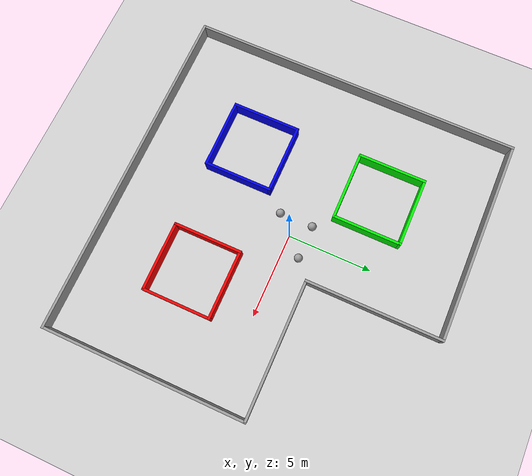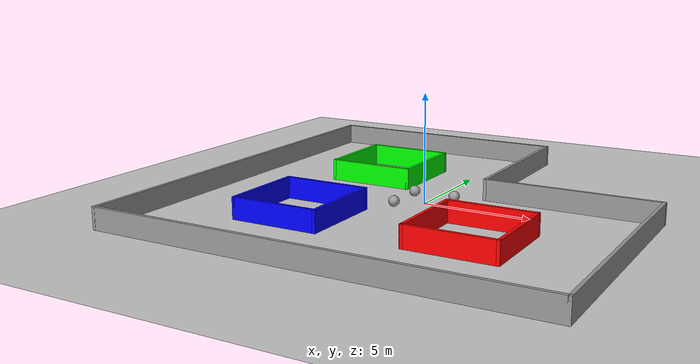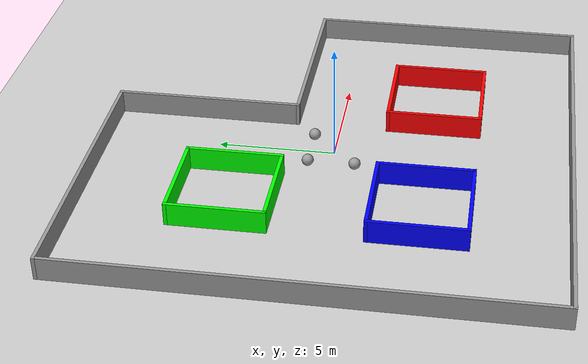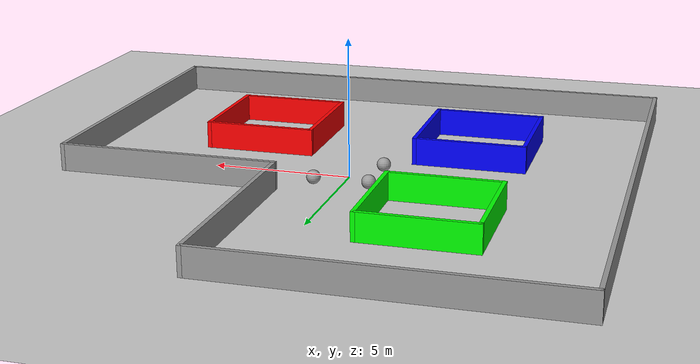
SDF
<sdf version="1.6">
 <world name="default">
  <light name="sun" type="directional">
   <pose>0 0 10 0 -0 0</pose>
   <diffuse>0.8 0.8 0.8 1</diffuse>
   <specular>0.1 0.1 0.1 1</specular>
   <attenuation>
    <range>1000</range>
    <constant>0.9</constant>
    <linear>0.01</linear>
    <quadratic>0.001</quadratic>
   </attenuation>
   <direction>-0.5 0.5 -1</direction>
  </light>
  <model name="ground_plane">
   <static>1</static>
   <link name="link">
    <collision name="collision">
     <geometry><plane><normal>0 0 1</normal><size>100 100</size></plane></geometry>
     <surface><friction><ode><mu>100</mu><mu2>50</mu2></ode></friction></surface>
    </collision>
    <visual name="visual">
     <cast_shadows>0</cast_shadows>
     <geometry><plane><normal>0 0 1</normal><size>100 100</size></plane></geometry>
     <material>
      <script><uri>file://media/materials/scripts/gazebo.material</uri><name>Gazebo/Grey</name></script>
     </material>
    </visual>
   </link>
  </model>
  <gravity>0 0 -9.8</gravity>
  <magnetic_field>6e-06 2.3e-05 -4.2e-05</magnetic_field>
  <atmosphere type="adiabatic"/>
  <physics name="default_physics" default="0" type="ode">
   <max_step_size>0.001</max_step_size>
   <real_time_factor>1</real_time_factor>
   <real_time_update_rate>1000</real_time_update_rate>
  </physics>
  <scene><ambient>0.4 0.4 0.4 1</ambient><background>0.7 0.7 0.7 1</background><shadows>1</shadows></scene>
  <spherical_coordinates>
   <surface_model>EARTH_WGS84</surface_model>
   <latitude_deg>0</latitude_deg>
   <longitude_deg>0</longitude_deg>
   <elevation>0</elevation>
   <heading_deg>0</heading_deg>
  </spherical_coordinates>
  <model name="sphere1">
   <pose>1 1 0.25 0 -0 0</pose>
   <link name="link">
    <inertial>
     <mass>1</mass>
     <inertia><ixx>0.1</ixx><ixy>0</ixy><ixz>0</ixz><iyy>0.1</iyy><iyz>0</iyz><izz>0.1</izz></inertia>
    </inertial>
    <collision name="collision"><geometry><sphere><radius>0.25</radius></sphere></geometry></collision>
    <visual name="visual">
     <geometry><sphere><radius>0.25</radius></sphere></geometry>
     <material>
      <script><name>Gazebo/Grey</name><uri>file://media/materials/scripts/gazebo.material</uri></script>
     </material>
    </visual>
   </link>
  </model>
  <model name="sphere2">
   <pose>-1 1 0.25 0 -0 0</pose>
   <link name="link">
    <inertial>
     <mass>1</mass>
     <inertia><ixx>0.1</ixx><ixy>0</ixy><ixz>0</ixz><iyy>0.1</iyy><iyz>0</iyz><izz>0.1</izz></inertia>
    </inertial>
    <collision name="collision"><geometry><sphere><radius>0.25</radius></sphere></geometry></collision>
    <visual name="visual">
     <geometry><sphere><radius>0.25</radius></sphere></geometry>
     <material>
      <script><name>Gazebo/Grey</name><uri>file://media/materials/scripts/gazebo.material</uri></script>
     </material>
    </visual>
   </link>
  </model>
  <model name="sphere3">
   <pose>-1 -1 0.25 0 -0 0</pose>
   <link name="link">
    <inertial>
     <mass>1</mass>
     <inertia><ixx>0.1</ixx><ixy>0</ixy><ixz>0</ixz><iyy>0.1</iyy><iyz>0</iyz><izz>0.1</izz></inertia>
    </inertial>
    <collision name="collision"><geometry><sphere><radius>0.25</radius></sphere></geometry></collision>
    <visual name="visual">
     <geometry><sphere><radius>0.25</radius></sphere></geometry>
     <material>
      <script><name>Gazebo/Grey</name><uri>file://media/materials/scripts/gazebo.material</uri></script>
     </material>
    </visual>
   </link>
  </model>
  <model name="Dynamic_stage">
   <pose>0.110177 -0.07071 0 0 -0 0</pose>
   <link name="Wall_10">
    <collision name="Wall_10_Collision">
     <geometry><box><size>12.15 0.15 1</size></box></geometry>
     <pose>0 0 0.5 0 -0 0</pose>
    </collision>
    <visual name="Wall_10_Visual">
     <pose>0 0 0.5 0 -0 0</pose>
     <geometry><box><size>12.15 0.15 1</size></box></geometry>
     <material>
      <script><uri>file://media/materials/scripts/gazebo.material</uri><name>Gazebo/Grey</name></script>
      <ambient>0 0 0 1</ambient>
     </material>
    </visual>
    <pose>-4 10 0 0 -0 3.14159</pose>
   </link>
   <link name="Wall_12">
    <collision name="Wall_12_Collision">
     <geometry><box><size>4.15 0.15 1</size></box></geometry>
     <pose>0 0 0.5 0 -0 0</pose>
    </collision>
    <visual name="Wall_12_Visual">
     <pose>0 0 0.5 0 -0 0</pose>
     <geometry><box><size>4.15 0.15 1</size></box></geometry>
     <material>
      <script><uri>file://media/materials/scripts/gazebo.material</uri><name>Gazebo/Grey</name></script>
      <ambient>0 1 0 1</ambient>
     </material>
    </visual>
    <pose>-6 4 0 0 0 -1.5708</pose>
   </link>
   <link name="Wall_13">
    <collision name="Wall_13_Collision">
     <geometry><box><size>4.15 0.15 1</size></box></geometry>
     <pose>0 0 0.5 0 -0 0</pose>
    </collision>
    <visual name="Wall_13_Visual">
     <pose>0 0 0.5 0 -0 0</pose>
     <geometry><box><size>4.15 0.15 1</size></box></geometry>
     <material>
      <script><uri>file://media/materials/scripts/gazebo.material</uri><name>Gazebo/Grey</name></script>
      <ambient>0 1 0 1</ambient>
     </material>
    </visual>
    <pose>-4 2 0 0 -0 0</pose>
   </link>
   <link name="Wall_14">
    <collision name="Wall_14_Collision">
     <geometry><box><size>4.15 0.15 1</size></box></geometry>
     <pose>0 0 0.5 0 -0 0</pose>
    </collision>
    <visual name="Wall_14_Visual">
     <pose>0 0 0.5 0 -0 0</pose>
     <geometry><box><size>4.15 0.15 1</size></box></geometry>
     <material>
      <script><uri>file://media/materials/scripts/gazebo.material</uri><name>Gazebo/Grey</name></script>
      <ambient>0 1 0 1</ambient>
     </material>
    </visual>
    <pose>-2 4 0 0 -0 1.5708</pose>
   </link>
   <link name="Wall_15">
    <collision name="Wall_15_Collision">
     <geometry><box><size>4.15 0.15 1</size></box></geometry>
     <pose>0 0 0.5 0 -0 0</pose>
    </collision>
    <visual name="Wall_15_Visual">
     <pose>0 0 0.5 0 -0 0</pose>
     <geometry><box><size>4.15 0.15 1</size></box></geometry>
     <material>
      <script><uri>file://media/materials/scripts/gazebo.material</uri><name>Gazebo/Grey</name></script>
      <ambient>0 1 0 1</ambient>
     </material>
    </visual>
    <pose>-4 6 0 0 -0 3.14159</pose>
   </link>
   <link name="Wall_17">
    <collision name="Wall_17_Collision">
     <geometry><box><size>4.15 0.15 1</size></box></geometry>
     <pose>0 0 0.5 0 -0 0</pose>
    </collision>
    <visual name="Wall_17_Visual">
     <pose>0 0 0.5 0 -0 0</pose>
     <geometry><box><size>4.15 0.15 1</size></box></geometry>
     <material>
      <script><uri>file://media/materials/scripts/gazebo.material</uri><name>Gazebo/Grey</name></script>
      <ambient>0 0 1 1</ambient>
     </material>
    </visual>
    <pose>-6 -4 0 0 0 -1.5708</pose>
   </link>
   <link name="Wall_18">
    <collision name="Wall_18_Collision">
     <geometry><box><size>4.173 0.15 1</size></box></geometry>
     <pose>0 0 0.5 0 -0 0</pose>
    </collision>
    <visual name="Wall_18_Visual">
     <pose>0 0 0.5 0 -0 0</pose>
     <geometry><box><size>4.173 0.15 1</size></box></geometry>
     <material>
      <script><uri>file://media/materials/scripts/gazebo.material</uri><name>Gazebo/Grey</name></script>
      <ambient>0 0 1 1</ambient>
     </material>
    </visual>
    <pose>-3.9885 -6 0 0 -0 0</pose>
   </link>
   <link name="Wall_19">
    <collision name="Wall_19_Collision">
     <geometry><box><size>4.15 0.15 1</size></box></geometry>
     <pose>0 0 0.5 0 -0 0</pose>
    </collision>
    <visual name="Wall_19_Visual">
     <pose>0 0 0.5 0 -0 0</pose>
     <geometry><box><size>4.15 0.15 1</size></box></geometry>
     <material>
      <script><uri>file://media/materials/scripts/gazebo.material</uri><name>Gazebo/Grey</name></script>
      <ambient>0 0 1 1</ambient>
     </material>
    </visual>
    <pose>-1.977 -4 0 0 -0 1.5708</pose>
   </link>
   <link name="Wall_20">
    <collision name="Wall_20_Collision">
     <geometry><box><size>4.173 0.15 1</size></box></geometry>
     <pose>0 0 0.5 0 -0 0</pose>
    </collision>
    <visual name="Wall_20_Visual">
     <pose>0 0 0.5 0 -0 0</pose>
     <geometry><box><size>4.173 0.15 1</size></box></geometry>
     <material>
      <script><uri>file://media/materials/scripts/gazebo.material</uri><name>Gazebo/Grey</name></script>
      <ambient>0 0 1 1</ambient>
     </material>
    </visual>
    <pose>-3.9885 -2 0 0 -0 3.14159</pose>
   </link>
   <link name="Wall_22">
    <collision name="Wall_22_Collision">
     <geometry><box><size>4.15 0.15 1</size></box></geometry>
     <pose>0 0 0.5 0 -0 0</pose>
    </collision>
    <visual name="Wall_22_Visual">
     <pose>0 0 0.5 0 -0 0</pose>
     <geometry><box><size>4.15 0.15 1</size></box></geometry>
     <material>
      <script><uri>file://media/materials/scripts/gazebo.material</uri><name>Gazebo/Grey</name></script>
      <ambient>1 0 0 1</ambient>
     </material>
    </visual>
    <pose>2 -4 0 0 0 -1.5708</pose>
   </link>
   <link name="Wall_23">
    <collision name="Wall_23_Collision">
     <geometry><box><size>4.15 0.15 1</size></box></geometry>
     <pose>0 0 0.5 0 -0 0</pose>
    </collision>
    <visual name="Wall_23_Visual">
     <pose>0 0 0.5 0 -0 0</pose>
     <geometry><box><size>4.15 0.15 1</size></box></geometry>
     <material>
      <script><uri>file://media/materials/scripts/gazebo.material</uri><name>Gazebo/Grey</name></script>
      <ambient>1 0 0 1</ambient>
     </material>
    </visual>
    <pose>4 -6 0 0 -0 0</pose>
   </link>
   <link name="Wall_24">
    <collision name="Wall_24_Collision">
     <geometry><box><size>4.15 0.15 1</size></box></geometry>
     <pose>0 0 0.5 0 -0 0</pose>
    </collision>
    <visual name="Wall_24_Visual">
     <pose>0 0 0.5 0 -0 0</pose>
     <geometry><box><size>4.15 0.15 1</size></box></geometry>
     <material>
      <script><uri>file://media/materials/scripts/gazebo.material</uri><name>Gazebo/Grey</name></script>
      <ambient>1 0 0 1</ambient>
     </material>
    </visual>
    <pose>6 -4 0 0 -0 1.5708</pose>
   </link>
   <link name="Wall_25">
    <collision name="Wall_25_Collision">
     <geometry><box><size>4.15 0.15 1</size></box></geometry>
     <pose>0 0 0.5 0 -0 0</pose>
    </collision>
    <visual name="Wall_25_Visual">
     <pose>0 0 0.5 0 -0 0</pose>
     <geometry><box><size>4.15 0.15 1</size></box></geometry>
     <material>
      <script><uri>file://media/materials/scripts/gazebo.material</uri><name>Gazebo/Grey</name></script>
      <ambient>1 0 0 1</ambient>
     </material>
    </visual>
    <pose>4 -2 0 0 -0 3.14159</pose>
   </link>
   <link name="Wall_5">
    <collision name="Wall_5_Collision">
     <geometry><box><size>20.15 0.15 1</size></box></geometry>
     <pose>0 0 0.5 0 -0 0</pose>
    </collision>
    <visual name="Wall_5_Visual">
     <pose>0 0 0.5 0 -0 0</pose>
     <geometry><box><size>20.15 0.15 1</size></box></geometry>
     <material>
      <script><uri>file://media/materials/scripts/gazebo.material</uri><name>Gazebo/Grey</name></script>
      <ambient>0 0 0 1</ambient>
     </material>
    </visual>
    <pose>-10 0 0 0 0 -1.5708</pose>
   </link>
   <link name="Wall_6">
    <collision name="Wall_6_Collision">
     <geometry><box><size>20.15 0.15 1</size></box></geometry>
     <pose>0 0 0.5 0 -0 0</pose>
    </collision>
    <visual name="Wall_6_Visual">
     <pose>0 0 0.5 0 -0 0</pose>
     <geometry><box><size>20.15 0.15 1</size></box></geometry>
     <material>
      <script><uri>file://media/materials/scripts/gazebo.material</uri><name>Gazebo/Grey</name></script>
      <ambient>0 0 0 1</ambient>
     </material>
    </visual>
    <pose>0 -10 0 0 -0 0</pose>
   </link>
   <link name="Wall_7">
    <collision name="Wall_7_Collision">
     <geometry><box><size>12.15 0.15 1</size></box></geometry>
     <pose>0 0 0.5 0 -0 0</pose>
    </collision>
    <visual name="Wall_7_Visual">
     <pose>0 0 0.5 0 -0 0</pose>
     <geometry><box><size>12.15 0.15 1</size></box></geometry>
     <material>
      <script><uri>file://media/materials/scripts/gazebo.material</uri><name>Gazebo/Grey</name></script>
      <ambient>0 0 0 1</ambient>
     </material>
    </visual>
    <pose>10 -4 0 0 -0 1.5708</pose>
   </link>
   <link name="Wall_8">
    <collision name="Wall_8_Collision">
     <geometry><box><size>8.15 0.15 1</size></box></geometry>
     <pose>0 0 0.5 0 -0 0</pose>
    </collision>
    <visual name="Wall_8_Visual">
     <pose>0 0 0.5 0 -0 0</pose>
     <geometry><box><size>8.15 0.15 1</size></box></geometry>
     <material>
      <script><uri>file://media/materials/scripts/gazebo.material</uri><name>Gazebo/Grey</name></script>
      <ambient>0 0 0 1</ambient>
     </material>
    </visual>
    <pose>6 2 0 0 -0 3.14159</pose>
   </link>
   <link name="Wall_9">
    <collision name="Wall_9_Collision">
     <geometry><box><size>8.15 0.15 1</size></box></geometry>
     <pose>0 0 0.5 0 -0 0</pose>
    </collision>
    <visual name="Wall_9_Visual">
     <pose>0 0 0.5 0 -0 0</pose>
     <geometry><box><size>8.15 0.15 1</size></box></geometry>
     <material>
      <script><uri>file://media/materials/scripts/gazebo.material</uri><name>Gazebo/Grey</name></script>
      <ambient>0 0 0 1</ambient>
     </material>
    </visual>
    <pose>2 6 0 0 -0 1.5708</pose>
   </link>
   <static>1</static>
  </model>
 </world>
</sdf>
